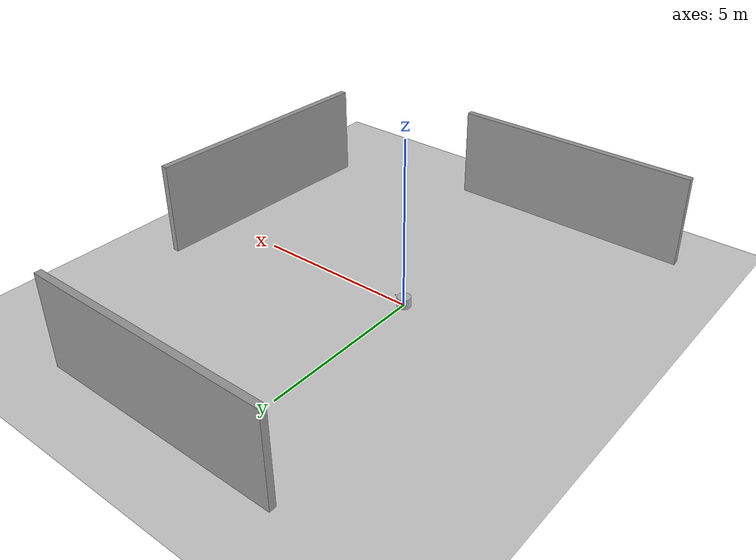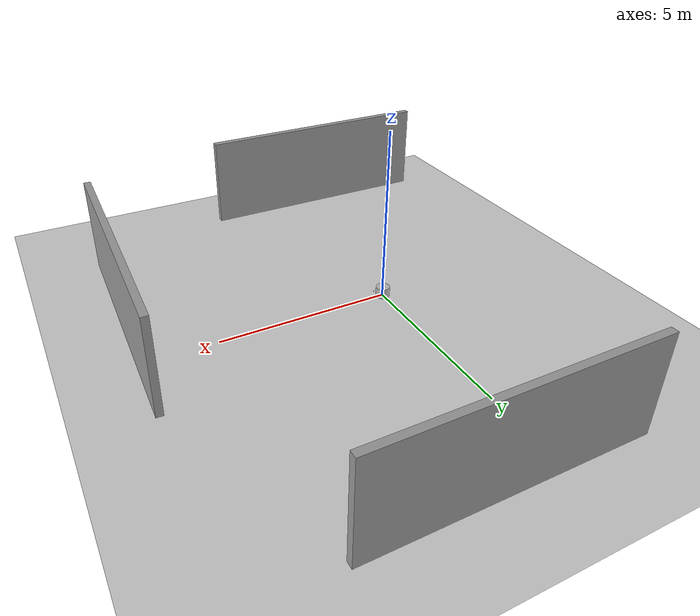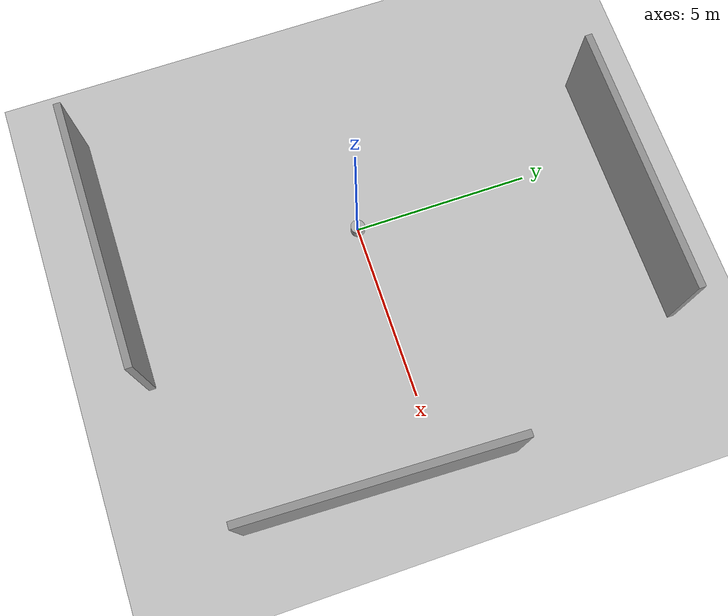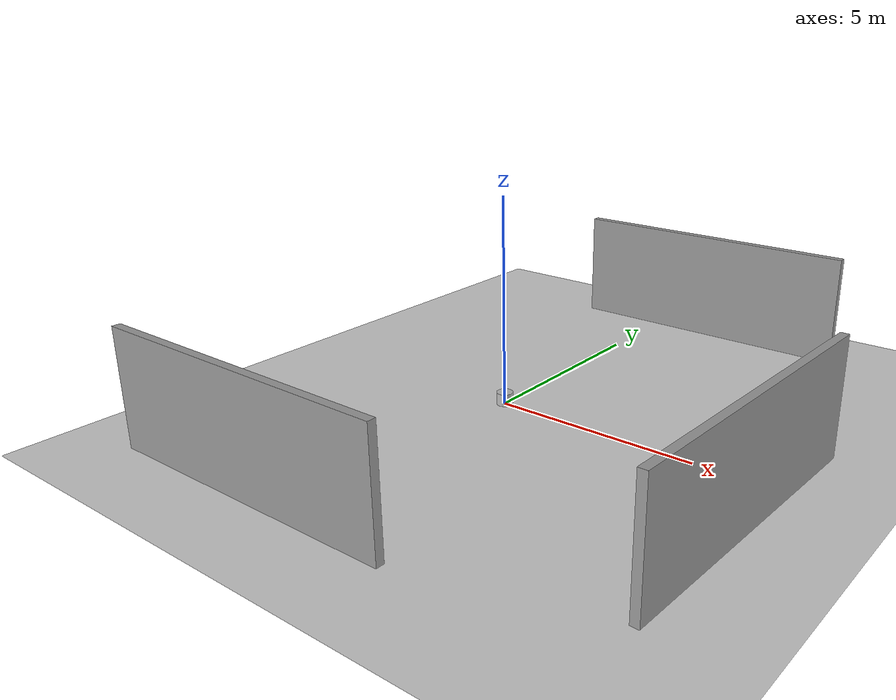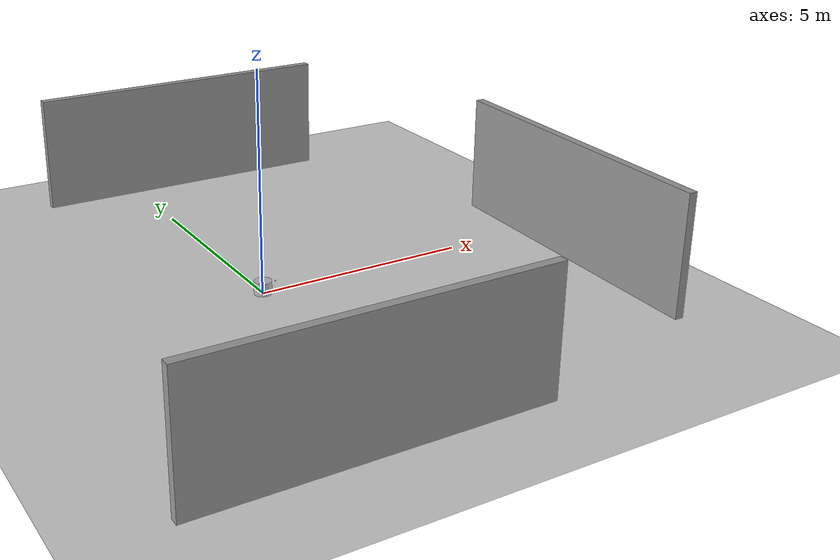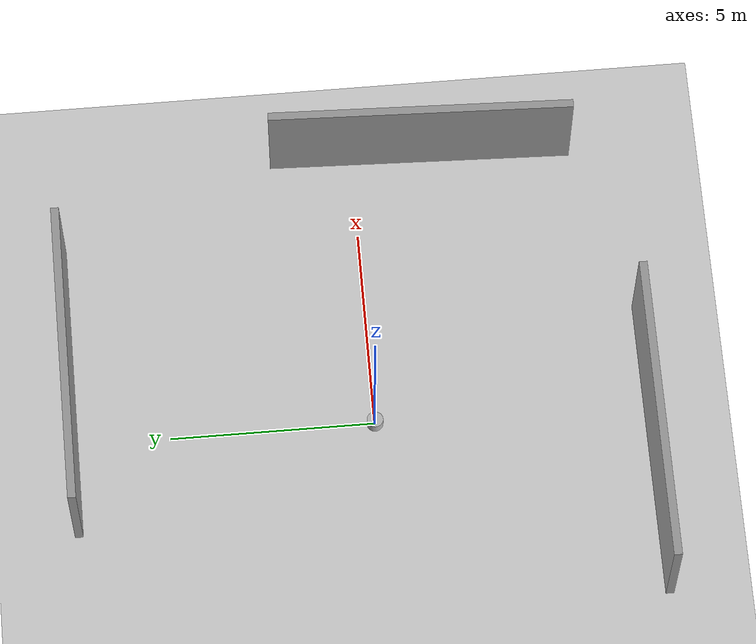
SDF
<sdf version="1.7">
 <world name="default">
  <light name="sun" type="directional">
   <pose>0 0 10 0 -0 0</pose>
   <diffuse>0.8 0.8 0.8 1</diffuse>
   <specular>0.2 0.2 0.2 1</specular>
   <attenuation>
    <range>1000</range>
    <constant>0.9</constant>
    <linear>0.01</linear>
    <quadratic>0.001</quadratic>
   </attenuation>
   <direction>-0.5 0.1 -0.9</direction>
   <spot><inner_angle>0</inner_angle><outer_angle>0</outer_angle><falloff>0</falloff></spot>
  </light>
  <model name="ground_plane">
   <static>1</static>
   <link name="link">
    <collision name="collision">
     <geometry><plane><normal>0 0 1</normal><size>100 100</size></plane></geometry>
     <surface><friction><ode><mu>100</mu><mu2>50</mu2></ode></friction></surface>
    </collision>
    <visual name="visual">
     <cast_shadows>0</cast_shadows>
     <geometry><plane><normal>0 0 1</normal><size>100 100</size></plane></geometry>
     <material>
      <script><uri>file://media/materials/scripts/gazebo.material</uri><name>Gazebo/Grey</name></script>
     </material>
    </visual>
   </link>
  </model>
  <gravity>0 0 -9.8</gravity>
  <magnetic_field>6e-06 2.3e-05 -4.2e-05</magnetic_field>
  <atmosphere type="adiabatic"/>
  <physics type="ode">
   <max_step_size>0.001</max_step_size>
   <real_time_factor>1</real_time_factor>
   <real_time_update_rate>1000</real_time_update_rate>
  </physics>
  <scene><ambient>0.4 0.4 0.4 1</ambient><background>0.7 0.7 0.7 1</background><shadows>1</shadows></scene>
  <audio><device>default</device></audio>
  <spherical_coordinates>
   <surface_model>EARTH_WGS84</surface_model>
   <latitude_deg>0</latitude_deg>
   <longitude_deg>0</longitude_deg>
   <elevation>0</elevation>
   <heading_deg>0</heading_deg>
  </spherical_coordinates>
  <model name="robot1">
   <link name="base_link">
    <inertial>
     <mass>10</mass>
     <inertia><ixx>1</ixx><ixy>0</ixy><ixz>0</ixz><iyy>1</iyy><iyz>0</iyz><izz>1</izz></inertia>
    </inertial>
    <collision name="base_link_collision">
     <geometry><cylinder><length>0.3</length><radius>0.2</radius></cylinder></geometry>
    </collision>
    <visual name="base_link_visual">
     <geometry><cylinder><length>0.3</length><radius>0.2</radius></cylinder></geometry>
    </visual>
    <visual name="base_link_fixed_joint_lump__camera_link_visual_1">
     <pose>0.305 0 0.08 0 -0 0</pose>
     <geometry><box><size>0.01 0.03 0.03</size></box></geometry>
    </visual>
    <sensor name="camera" type="depth">
     <visualize>1</visualize>
     <update_rate>10</update_rate>
     <camera>
      <horizontal_fov>1.089</horizontal_fov>
      <image><format>R8G8B8</format><width>640</width><height>480</height></image>
      <clip><near>0.05</near><far>8</far></clip>
     </camera>
     <plugin name="camera_controller" filename="libgazebo_ros_camera.so">
      <frame_name>camera_frame</frame_name>
      <topic_name>camera_topic</topic_name>
     </plugin>
     <pose>0.305 0 0.08 0 -0 0</pose>
    </sensor>
   </link>
   <pose>0 0 0.149991 -2e-06 2e-06 -0</pose>
  </model>
  <model name="grey_wall">
   <static>1</static>
   <link name="link">
    <pose>0 0 1.4 0 -0 0</pose>
    <collision name="collision"><geometry><box><size>7.5 0.2 2.8</size></box></geometry></collision>
    <visual name="visual">
     <cast_shadows>0</cast_shadows>
     <geometry><box><size>7.5 0.2 2.8</size></box></geometry>
     <material>
      <script>
       <uri>model://grey_wall/materials/scripts</uri>
       <uri>model://grey_wall/materials/textures</uri>
       <name>vrc/grey_wall</name>
      </script>
     </material>
    </visual>
   </link>
   <pose>7.03996 -1.71189 0 0 0 -1.6047</pose>
  </model>
  <model name="grey_wall_0">
   <static>1</static>
   <link name="link">
    <pose>0 0 1.4 0 -0 0</pose>
    <collision name="collision"><geometry><box><size>7.5 0.2 2.8</size></box></geometry></collision>
    <visual name="visual">
     <cast_shadows>0</cast_shadows>
     <geometry><box><size>7.5 0.2 2.8</size></box></geometry>
     <material>
      <script>
       <uri>model://grey_wall/materials/scripts</uri>
       <uri>model://grey_wall/materials/textures</uri>
       <name>vrc/grey_wall</name>
      </script>
     </material>
    </visual>
   </link>
   <pose>1.40792 7.37094 0 0 -0 0</pose>
  </model>
  <model name="grey_wall_1">
   <static>1</static>
   <link name="link">
    <pose>0 0 1.4 0 -0 0</pose>
    <collision name="collision"><geometry><box><size>7.5 0.2 2.8</size></box></geometry></collision>
    <visual name="visual">
     <cast_shadows>0</cast_shadows>
     <geometry><box><size>7.5 0.2 2.8</size></box></geometry>
     <material>
      <script>
       <uri>model://grey_wall/materials/scripts</uri>
       <uri>model://grey_wall/materials/textures</uri>
       <name>vrc/grey_wall</name>
      </script>
     </material>
    </visual>
   </link>
   <pose>-1.18907 -6.69445 0 0 -0 0</pose>
  </model>
 </world>
</sdf>
